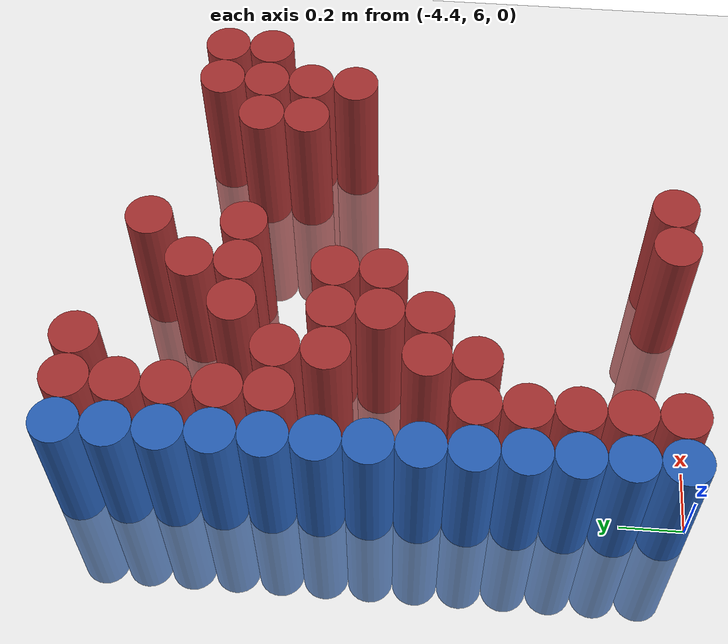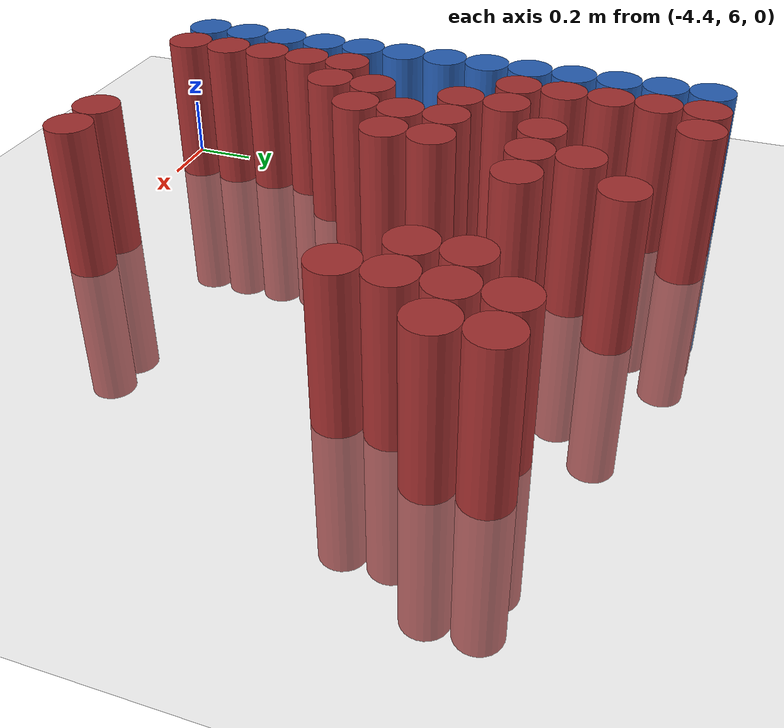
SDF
<sdf version="1.6">
 <world name="default">
  <model name="ground_plane">
   <static>1</static>
   <link name="link">
    <collision name="collision">
     <geometry><plane><normal>0 0 1</normal><size>100 100</size></plane></geometry>
     <surface><friction><ode><mu>100</mu><mu2>50</mu2></ode></friction></surface>
    </collision>
    <visual name="visual">
     <cast_shadows>0</cast_shadows>
     <geometry><plane><normal>0 0 1</normal><size>100 100</size></plane></geometry>
     <material>
      <script><uri>file://media/materials/scripts/gazebo.material</uri><name>Gazebo/Grey</name></script>
     </material>
    </visual>
   </link>
  </model>
  <model name="unit_cylinder_102">
   <static>1</static>
   <pose>-4.425000 6.075000 0.000000 0.000000 0.000000 0.000000</pose>
   <link name="link">
    <inertial>
     <mass>1</mass>
     <inertia><ixx>0.145833</ixx><ixy>0</ixy><ixz>0</ixz><iyy>0.145833</iyy><iyz>0</iyz><izz>0.125</izz></inertia>
    </inertial>
    <collision name="collision">
     <geometry><cylinder><radius>0.075000</radius><length>1</length></cylinder></geometry>
    </collision>
    <visual name="visual">
     <geometry><cylinder><radius>0.075000</radius><length>1</length></cylinder></geometry>
     <material>
      <ambient>0.152000 0.379000 0.720000 1</ambient>
      <diffuse>0.152000 0.379000 0.720000 1</diffuse>
     </material>
     <material>
      <script><name>Gazebo/Grey</name><uri>file://media/materials/scripts/gazebo.material</uri></script>
     </material>
    </visual>
   </link>
  </model>
  <model name="unit_cylinder_103">
   <static>1</static>
   <pose>-4.425000 6.225000 0.000000 0.000000 0.000000 0.000000</pose>
   <link name="link">
    <inertial>
     <mass>1</mass>
     <inertia><ixx>0.145833</ixx><ixy>0</ixy><ixz>0</ixz><iyy>0.145833</iyy><iyz>0</iyz><izz>0.125</izz></inertia>
    </inertial>
    <collision name="collision">
     <geometry><cylinder><radius>0.075000</radius><length>1</length></cylinder></geometry>
    </collision>
    <visual name="visual">
     <geometry><cylinder><radius>0.075000</radius><length>1</length></cylinder></geometry>
     <material>
      <ambient>0.152000 0.379000 0.720000 1</ambient>
      <diffuse>0.152000 0.379000 0.720000 1</diffuse>
     </material>
     <material>
      <script><name>Gazebo/Grey</name><uri>file://media/materials/scripts/gazebo.material</uri></script>
     </material>
    </visual>
   </link>
  </model>
  <model name="unit_cylinder_104">
   <static>1</static>
   <pose>-4.425000 6.375000 0.000000 0.000000 0.000000 0.000000</pose>
   <link name="link">
    <inertial>
     <mass>1</mass>
     <inertia><ixx>0.145833</ixx><ixy>0</ixy><ixz>0</ixz><iyy>0.145833</iyy><iyz>0</iyz><izz>0.125</izz></inertia>
    </inertial>
    <collision name="collision">
     <geometry><cylinder><radius>0.075000</radius><length>1</length></cylinder></geometry>
    </collision>
    <visual name="visual">
     <geometry><cylinder><radius>0.075000</radius><length>1</length></cylinder></geometry>
     <material>
      <ambient>0.152000 0.379000 0.720000 1</ambient>
      <diffuse>0.152000 0.379000 0.720000 1</diffuse>
     </material>
     <material>
      <script><name>Gazebo/Grey</name><uri>file://media/materials/scripts/gazebo.material</uri></script>
     </material>
    </visual>
   </link>
  </model>
  <model name="unit_cylinder_105">
   <static>1</static>
   <pose>-4.425000 6.525000 0.000000 0.000000 0.000000 0.000000</pose>
   <link name="link">
    <inertial>
     <mass>1</mass>
     <inertia><ixx>0.145833</ixx><ixy>0</ixy><ixz>0</ixz><iyy>0.145833</iyy><iyz>0</iyz><izz>0.125</izz></inertia>
    </inertial>
    <collision name="collision">
     <geometry><cylinder><radius>0.075000</radius><length>1</length></cylinder></geometry>
    </collision>
    <visual name="visual">
     <geometry><cylinder><radius>0.075000</radius><length>1</length></cylinder></geometry>
     <material>
      <ambient>0.152000 0.379000 0.720000 1</ambient>
      <diffuse>0.152000 0.379000 0.720000 1</diffuse>
     </material>
     <material>
      <script><name>Gazebo/Grey</name><uri>file://media/materials/scripts/gazebo.material</uri></script>
     </material>
    </visual>
   </link>
  </model>
  <model name="unit_cylinder_106">
   <static>1</static>
   <pose>-4.425000 6.675000 0.000000 0.000000 0.000000 0.000000</pose>
   <link name="link">
    <inertial>
     <mass>1</mass>
     <inertia><ixx>0.145833</ixx><ixy>0</ixy><ixz>0</ixz><iyy>0.145833</iyy><iyz>0</iyz><izz>0.125</izz></inertia>
    </inertial>
    <collision name="collision">
     <geometry><cylinder><radius>0.075000</radius><length>1</length></cylinder></geometry>
    </collision>
    <visual name="visual">
     <geometry><cylinder><radius>0.075000</radius><length>1</length></cylinder></geometry>
     <material>
      <ambient>0.152000 0.379000 0.720000 1</ambient>
      <diffuse>0.152000 0.379000 0.720000 1</diffuse>
     </material>
     <material>
      <script><name>Gazebo/Grey</name><uri>file://media/materials/scripts/gazebo.material</uri></script>
     </material>
    </visual>
   </link>
  </model>
  <model name="unit_cylinder_107">
   <static>1</static>
   <pose>-4.425000 6.825000 0.000000 0.000000 0.000000 0.000000</pose>
   <link name="link">
    <inertial>
     <mass>1</mass>
     <inertia><ixx>0.145833</ixx><ixy>0</ixy><ixz>0</ixz><iyy>0.145833</iyy><iyz>0</iyz><izz>0.125</izz></inertia>
    </inertial>
    <collision name="collision">
     <geometry><cylinder><radius>0.075000</radius><length>1</length></cylinder></geometry>
    </collision>
    <visual name="visual">
     <geometry><cylinder><radius>0.075000</radius><length>1</length></cylinder></geometry>
     <material>
      <ambient>0.152000 0.379000 0.720000 1</ambient>
      <diffuse>0.152000 0.379000 0.720000 1</diffuse>
     </material>
     <material>
      <script><name>Gazebo/Grey</name><uri>file://media/materials/scripts/gazebo.material</uri></script>
     </material>
    </visual>
   </link>
  </model>
  <model name="unit_cylinder_108">
   <static>1</static>
   <pose>-4.425000 6.975000 0.000000 0.000000 0.000000 0.000000</pose>
   <link name="link">
    <inertial>
     <mass>1</mass>
     <inertia><ixx>0.145833</ixx><ixy>0</ixy><ixz>0</ixz><iyy>0.145833</iyy><iyz>0</iyz><izz>0.125</izz></inertia>
    </inertial>
    <collision name="collision">
     <geometry><cylinder><radius>0.075000</radius><length>1</length></cylinder></geometry>
    </collision>
    <visual name="visual">
     <geometry><cylinder><radius>0.075000</radius><length>1</length></cylinder></geometry>
     <material>
      <ambient>0.152000 0.379000 0.720000 1</ambient>
      <diffuse>0.152000 0.379000 0.720000 1</diffuse>
     </material>
     <material>
      <script><name>Gazebo/Grey</name><uri>file://media/materials/scripts/gazebo.material</uri></script>
     </material>
    </visual>
   </link>
  </model>
  <model name="unit_cylinder_109">
   <static>1</static>
   <pose>-4.425000 7.125000 0.000000 0.000000 0.000000 0.000000</pose>
   <link name="link">
    <inertial>
     <mass>1</mass>
     <inertia><ixx>0.145833</ixx><ixy>0</ixy><ixz>0</ixz><iyy>0.145833</iyy><iyz>0</iyz><izz>0.125</izz></inertia>
    </inertial>
    <collision name="collision">
     <geometry><cylinder><radius>0.075000</radius><length>1</length></cylinder></geometry>
    </collision>
    <visual name="visual">
     <geometry><cylinder><radius>0.075000</radius><length>1</length></cylinder></geometry>
     <material>
      <ambient>0.152000 0.379000 0.720000 1</ambient>
      <diffuse>0.152000 0.379000 0.720000 1</diffuse>
     </material>
     <material>
      <script><name>Gazebo/Grey</name><uri>file://media/materials/scripts/gazebo.material</uri></script>
     </material>
    </visual>
   </link>
  </model>
  <model name="unit_cylinder_110">
   <static>1</static>
   <pose>-4.425000 7.275000 0.000000 0.000000 0.000000 0.000000</pose>
   <link name="link">
    <inertial>
     <mass>1</mass>
     <inertia><ixx>0.145833</ixx><ixy>0</ixy><ixz>0</ixz><iyy>0.145833</iyy><iyz>0</iyz><izz>0.125</izz></inertia>
    </inertial>
    <collision name="collision">
     <geometry><cylinder><radius>0.075000</radius><length>1</length></cylinder></geometry>
    </collision>
    <visual name="visual">
     <geometry><cylinder><radius>0.075000</radius><length>1</length></cylinder></geometry>
     <material>
      <ambient>0.152000 0.379000 0.720000 1</ambient>
      <diffuse>0.152000 0.379000 0.720000 1</diffuse>
     </material>
     <material>
      <script><name>Gazebo/Grey</name><uri>file://media/materials/scripts/gazebo.material</uri></script>
     </material>
    </visual>
   </link>
  </model>
  <model name="unit_cylinder_111">
   <static>1</static>
   <pose>-4.425000 7.425000 0.000000 0.000000 0.000000 0.000000</pose>
   <link name="link">
    <inertial>
     <mass>1</mass>
     <inertia><ixx>0.145833</ixx><ixy>0</ixy><ixz>0</ixz><iyy>0.145833</iyy><iyz>0</iyz><izz>0.125</izz></inertia>
    </inertial>
    <collision name="collision">
     <geometry><cylinder><radius>0.075000</radius><length>1</length></cylinder></geometry>
    </collision>
    <visual name="visual">
     <geometry><cylinder><radius>0.075000</radius><length>1</length></cylinder></geometry>
     <material>
      <ambient>0.152000 0.379000 0.720000 1</ambient>
      <diffuse>0.152000 0.379000 0.720000 1</diffuse>
     </material>
     <material>
      <script><name>Gazebo/Grey</name><uri>file://media/materials/scripts/gazebo.material</uri></script>
     </material>
    </visual>
   </link>
  </model>
  <model name="unit_cylinder_112">
   <static>1</static>
   <pose>-4.425000 7.575000 0.000000 0.000000 0.000000 0.000000</pose>
   <link name="link">
    <inertial>
     <mass>1</mass>
     <inertia><ixx>0.145833</ixx><ixy>0</ixy><ixz>0</ixz><iyy>0.145833</iyy><iyz>0</iyz><izz>0.125</izz></inertia>
    </inertial>
    <collision name="collision">
     <geometry><cylinder><radius>0.075000</radius><length>1</length></cylinder></geometry>
    </collision>
    <visual name="visual">
     <geometry><cylinder><radius>0.075000</radius><length>1</length></cylinder></geometry>
     <material>
      <ambient>0.152000 0.379000 0.720000 1</ambient>
      <diffuse>0.152000 0.379000 0.720000 1</diffuse>
     </material>
     <material>
      <script><name>Gazebo/Grey</name><uri>file://media/materials/scripts/gazebo.material</uri></script>
     </material>
    </visual>
   </link>
  </model>
  <model name="unit_cylinder_113">
   <static>1</static>
   <pose>-4.425000 7.725000 0.000000 0.000000 0.000000 0.000000</pose>
   <link name="link">
    <inertial>
     <mass>1</mass>
     <inertia><ixx>0.145833</ixx><ixy>0</ixy><ixz>0</ixz><iyy>0.145833</iyy><iyz>0</iyz><izz>0.125</izz></inertia>
    </inertial>
    <collision name="collision">
     <geometry><cylinder><radius>0.075000</radius><length>1</length></cylinder></geometry>
    </collision>
    <visual name="visual">
     <geometry><cylinder><radius>0.075000</radius><length>1</length></cylinder></geometry>
     <material>
      <ambient>0.152000 0.379000 0.720000 1</ambient>
      <diffuse>0.152000 0.379000 0.720000 1</diffuse>
     </material>
     <material>
      <script><name>Gazebo/Grey</name><uri>file://media/materials/scripts/gazebo.material</uri></script>
     </material>
    </visual>
   </link>
  </model>
  <model name="unit_cylinder_114">
   <static>1</static>
   <pose>-4.425000 7.875000 0.000000 0.000000 0.000000 0.000000</pose>
   <link name="link">
    <inertial>
     <mass>1</mass>
     <inertia><ixx>0.145833</ixx><ixy>0</ixy><ixz>0</ixz><iyy>0.145833</iyy><iyz>0</iyz><izz>0.125</izz></inertia>
    </inertial>
    <collision name="collision">
     <geometry><cylinder><radius>0.075000</radius><length>1</length></cylinder></geometry>
    </collision>
    <visual name="visual">
     <geometry><cylinder><radius>0.075000</radius><length>1</length></cylinder></geometry>
     <material>
      <ambient>0.152000 0.379000 0.720000 1</ambient>
      <diffuse>0.152000 0.379000 0.720000 1</diffuse>
     </material>
     <material>
      <script><name>Gazebo/Grey</name><uri>file://media/materials/scripts/gazebo.material</uri></script>
     </material>
    </visual>
   </link>
  </model>
  <model name="unit_cylinder_130">
   <static>1</static>
   <pose>-4.275000 6.075000 0.000000 0.000000 0.000000 0.000000</pose>
   <link name="link">
    <inertial>
     <mass>1</mass>
     <inertia><ixx>0.145833</ixx><ixy>0</ixy><ixz>0</ixz><iyy>0.145833</iyy><iyz>0</iyz><izz>0.125</izz></inertia>
    </inertial>
    <collision name="collision">
     <geometry><cylinder><radius>0.075000</radius><length>1</length></cylinder></geometry>
    </collision>
    <visual name="visual">
     <geometry><cylinder><radius>0.075000</radius><length>1</length></cylinder></geometry>
     <material>
      <ambient>0.648000 0.192000 0.192000 1</ambient>
      <diffuse>0.648000 0.192000 0.192000 1</diffuse>
     </material>
     <material>
      <script><name>Gazebo/Grey</name><uri>file://media/materials/scripts/gazebo.material</uri></script>
     </material>
    </visual>
   </link>
  </model>
  <model name="unit_cylinder_131">
   <static>1</static>
   <pose>-4.275000 6.225000 0.000000 0.000000 0.000000 0.000000</pose>
   <link name="link">
    <inertial>
     <mass>1</mass>
     <inertia><ixx>0.145833</ixx><ixy>0</ixy><ixz>0</ixz><iyy>0.145833</iyy><iyz>0</iyz><izz>0.125</izz></inertia>
    </inertial>
    <collision name="collision">
     <geometry><cylinder><radius>0.075000</radius><length>1</length></cylinder></geometry>
    </collision>
    <visual name="visual">
     <geometry><cylinder><radius>0.075000</radius><length>1</length></cylinder></geometry>
     <material>
      <ambient>0.648000 0.192000 0.192000 1</ambient>
      <diffuse>0.648000 0.192000 0.192000 1</diffuse>
     </material>
     <material>
      <script><name>Gazebo/Grey</name><uri>file://media/materials/scripts/gazebo.material</uri></script>
     </material>
    </visual>
   </link>
  </model>
  <model name="unit_cylinder_132">
   <static>1</static>
   <pose>-4.275000 6.375000 0.000000 0.000000 0.000000 0.000000</pose>
   <link name="link">
    <inertial>
     <mass>1</mass>
     <inertia><ixx>0.145833</ixx><ixy>0</ixy><ixz>0</ixz><iyy>0.145833</iyy><iyz>0</iyz><izz>0.125</izz></inertia>
    </inertial>
    <collision name="collision">
     <geometry><cylinder><radius>0.075000</radius><length>1</length></cylinder></geometry>
    </collision>
    <visual name="visual">
     <geometry><cylinder><radius>0.075000</radius><length>1</length></cylinder></geometry>
     <material>
      <ambient>0.648000 0.192000 0.192000 1</ambient>
      <diffuse>0.648000 0.192000 0.192000 1</diffuse>
     </material>
     <material>
      <script><name>Gazebo/Grey</name><uri>file://media/materials/scripts/gazebo.material</uri></script>
     </material>
    </visual>
   </link>
  </model>
  <model name="unit_cylinder_133">
   <static>1</static>
   <pose>-4.275000 6.525000 0.000000 0.000000 0.000000 0.000000</pose>
   <link name="link">
    <inertial>
     <mass>1</mass>
     <inertia><ixx>0.145833</ixx><ixy>0</ixy><ixz>0</ixz><iyy>0.145833</iyy><iyz>0</iyz><izz>0.125</izz></inertia>
    </inertial>
    <collision name="collision">
     <geometry><cylinder><radius>0.075000</radius><length>1</length></cylinder></geometry>
    </collision>
    <visual name="visual">
     <geometry><cylinder><radius>0.075000</radius><length>1</length></cylinder></geometry>
     <material>
      <ambient>0.648000 0.192000 0.192000 1</ambient>
      <diffuse>0.648000 0.192000 0.192000 1</diffuse>
     </material>
     <material>
      <script><name>Gazebo/Grey</name><uri>file://media/materials/scripts/gazebo.material</uri></script>
     </material>
    </visual>
   </link>
  </model>
  <model name="unit_cylinder_134">
   <static>1</static>
   <pose>-4.275000 6.675000 0.000000 0.000000 0.000000 0.000000</pose>
   <link name="link">
    <inertial>
     <mass>1</mass>
     <inertia><ixx>0.145833</ixx><ixy>0</ixy><ixz>0</ixz><iyy>0.145833</iyy><iyz>0</iyz><izz>0.125</izz></inertia>
    </inertial>
    <collision name="collision">
     <geometry><cylinder><radius>0.075000</radius><length>1</length></cylinder></geometry>
    </collision>
    <visual name="visual">
     <geometry><cylinder><radius>0.075000</radius><length>1</length></cylinder></geometry>
     <material>
      <ambient>0.648000 0.192000 0.192000 1</ambient>
      <diffuse>0.648000 0.192000 0.192000 1</diffuse>
     </material>
     <material>
      <script><name>Gazebo/Grey</name><uri>file://media/materials/scripts/gazebo.material</uri></script>
     </material>
    </visual>
   </link>
  </model>
  <model name="unit_cylinder_135">
   <static>1</static>
   <pose>-4.275000 7.275000 0.000000 0.000000 0.000000 0.000000</pose>
   <link name="link">
    <inertial>
     <mass>1</mass>
     <inertia><ixx>0.145833</ixx><ixy>0</ixy><ixz>0</ixz><iyy>0.145833</iyy><iyz>0</iyz><izz>0.125</izz></inertia>
    </inertial>
    <collision name="collision">
     <geometry><cylinder><radius>0.075000</radius><length>1</length></cylinder></geometry>
    </collision>
    <visual name="visual">
     <geometry><cylinder><radius>0.075000</radius><length>1</length></cylinder></geometry>
     <material>
      <ambient>0.648000 0.192000 0.192000 1</ambient>
      <diffuse>0.648000 0.192000 0.192000 1</diffuse>
     </material>
     <material>
      <script><name>Gazebo/Grey</name><uri>file://media/materials/scripts/gazebo.material</uri></script>
     </material>
    </visual>
   </link>
  </model>
  <model name="unit_cylinder_136">
   <static>1</static>
   <pose>-4.275000 7.425000 0.000000 0.000000 0.000000 0.000000</pose>
   <link name="link">
    <inertial>
     <mass>1</mass>
     <inertia><ixx>0.145833</ixx><ixy>0</ixy><ixz>0</ixz><iyy>0.145833</iyy><iyz>0</iyz><izz>0.125</izz></inertia>
    </inertial>
    <collision name="collision">
     <geometry><cylinder><radius>0.075000</radius><length>1</length></cylinder></geometry>
    </collision>
    <visual name="visual">
     <geometry><cylinder><radius>0.075000</radius><length>1</length></cylinder></geometry>
     <material>
      <ambient>0.648000 0.192000 0.192000 1</ambient>
      <diffuse>0.648000 0.192000 0.192000 1</diffuse>
     </material>
     <material>
      <script><name>Gazebo/Grey</name><uri>file://media/materials/scripts/gazebo.material</uri></script>
     </material>
    </visual>
   </link>
  </model>
  <model name="unit_cylinder_137">
   <static>1</static>
   <pose>-4.275000 7.575000 0.000000 0.000000 0.000000 0.000000</pose>
   <link name="link">
    <inertial>
     <mass>1</mass>
     <inertia><ixx>0.145833</ixx><ixy>0</ixy><ixz>0</ixz><iyy>0.145833</iyy><iyz>0</iyz><izz>0.125</izz></inertia>
    </inertial>
    <collision name="collision">
     <geometry><cylinder><radius>0.075000</radius><length>1</length></cylinder></geometry>
    </collision>
    <visual name="visual">
     <geometry><cylinder><radius>0.075000</radius><length>1</length></cylinder></geometry>
     <material>
      <ambient>0.648000 0.192000 0.192000 1</ambient>
      <diffuse>0.648000 0.192000 0.192000 1</diffuse>
     </material>
     <material>
      <script><name>Gazebo/Grey</name><uri>file://media/materials/scripts/gazebo.material</uri></script>
     </material>
    </visual>
   </link>
  </model>
  <model name="unit_cylinder_138">
   <static>1</static>
   <pose>-4.275000 7.725000 0.000000 0.000000 0.000000 0.000000</pose>
   <link name="link">
    <inertial>
     <mass>1</mass>
     <inertia><ixx>0.145833</ixx><ixy>0</ixy><ixz>0</ixz><iyy>0.145833</iyy><iyz>0</iyz><izz>0.125</izz></inertia>
    </inertial>
    <collision name="collision">
     <geometry><cylinder><radius>0.075000</radius><length>1</length></cylinder></geometry>
    </collision>
    <visual name="visual">
     <geometry><cylinder><radius>0.075000</radius><length>1</length></cylinder></geometry>
     <material>
      <ambient>0.648000 0.192000 0.192000 1</ambient>
      <diffuse>0.648000 0.192000 0.192000 1</diffuse>
     </material>
     <material>
      <script><name>Gazebo/Grey</name><uri>file://media/materials/scripts/gazebo.material</uri></script>
     </material>
    </visual>
   </link>
  </model>
  <model name="unit_cylinder_139">
   <static>1</static>
   <pose>-4.275000 7.875000 0.000000 0.000000 0.000000 0.000000</pose>
   <link name="link">
    <inertial>
     <mass>1</mass>
     <inertia><ixx>0.145833</ixx><ixy>0</ixy><ixz>0</ixz><iyy>0.145833</iyy><iyz>0</iyz><izz>0.125</izz></inertia>
    </inertial>
    <collision name="collision">
     <geometry><cylinder><radius>0.075000</radius><length>1</length></cylinder></geometry>
    </collision>
    <visual name="visual">
     <geometry><cylinder><radius>0.075000</radius><length>1</length></cylinder></geometry>
     <material>
      <ambient>0.648000 0.192000 0.192000 1</ambient>
      <diffuse>0.648000 0.192000 0.192000 1</diffuse>
     </material>
     <material>
      <script><name>Gazebo/Grey</name><uri>file://media/materials/scripts/gazebo.material</uri></script>
     </material>
    </visual>
   </link>
  </model>
  <model name="unit_cylinder_147">
   <static>1</static>
   <pose>-4.125000 6.675000 0.000000 0.000000 0.000000 0.000000</pose>
   <link name="link">
    <inertial>
     <mass>1</mass>
     <inertia><ixx>0.145833</ixx><ixy>0</ixy><ixz>0</ixz><iyy>0.145833</iyy><iyz>0</iyz><izz>0.125</izz></inertia>
    </inertial>
    <collision name="collision">
     <geometry><cylinder><radius>0.075000</radius><length>1</length></cylinder></geometry>
    </collision>
    <visual name="visual">
     <geometry><cylinder><radius>0.075000</radius><length>1</length></cylinder></geometry>
     <material>
      <ambient>0.648000 0.192000 0.192000 1</ambient>
      <diffuse>0.648000 0.192000 0.192000 1</diffuse>
     </material>
     <material>
      <script><name>Gazebo/Grey</name><uri>file://media/materials/scripts/gazebo.material</uri></script>
     </material>
    </visual>
   </link>
  </model>
  <model name="unit_cylinder_148">
   <static>1</static>
   <pose>-4.125000 6.825000 0.000000 0.000000 0.000000 0.000000</pose>
   <link name="link">
    <inertial>
     <mass>1</mass>
     <inertia><ixx>0.145833</ixx><ixy>0</ixy><ixz>0</ixz><iyy>0.145833</iyy><iyz>0</iyz><izz>0.125</izz></inertia>
    </inertial>
    <collision name="collision">
     <geometry><cylinder><radius>0.075000</radius><length>1</length></cylinder></geometry>
    </collision>
    <visual name="visual">
     <geometry><cylinder><radius>0.075000</radius><length>1</length></cylinder></geometry>
     <material>
      <ambient>0.648000 0.192000 0.192000 1</ambient>
      <diffuse>0.648000 0.192000 0.192000 1</diffuse>
     </material>
     <material>
      <script><name>Gazebo/Grey</name><uri>file://media/materials/scripts/gazebo.material</uri></script>
     </material>
    </visual>
   </link>
  </model>
  <model name="unit_cylinder_149">
   <static>1</static>
   <pose>-4.125000 7.125000 0.000000 0.000000 0.000000 0.000000</pose>
   <link name="link">
    <inertial>
     <mass>1</mass>
     <inertia><ixx>0.145833</ixx><ixy>0</ixy><ixz>0</ixz><iyy>0.145833</iyy><iyz>0</iyz><izz>0.125</izz></inertia>
    </inertial>
    <collision name="collision">
     <geometry><cylinder><radius>0.075000</radius><length>1</length></cylinder></geometry>
    </collision>
    <visual name="visual">
     <geometry><cylinder><radius>0.075000</radius><length>1</length></cylinder></geometry>
     <material>
      <ambient>0.648000 0.192000 0.192000 1</ambient>
      <diffuse>0.648000 0.192000 0.192000 1</diffuse>
     </material>
     <material>
      <script><name>Gazebo/Grey</name><uri>file://media/materials/scripts/gazebo.material</uri></script>
     </material>
    </visual>
   </link>
  </model>
  <model name="unit_cylinder_150">
   <static>1</static>
   <pose>-4.125000 7.275000 0.000000 0.000000 0.000000 0.000000</pose>
   <link name="link">
    <inertial>
     <mass>1</mass>
     <inertia><ixx>0.145833</ixx><ixy>0</ixy><ixz>0</ixz><iyy>0.145833</iyy><iyz>0</iyz><izz>0.125</izz></inertia>
    </inertial>
    <collision name="collision">
     <geometry><cylinder><radius>0.075000</radius><length>1</length></cylinder></geometry>
    </collision>
    <visual name="visual">
     <geometry><cylinder><radius>0.075000</radius><length>1</length></cylinder></geometry>
     <material>
      <ambient>0.648000 0.192000 0.192000 1</ambient>
      <diffuse>0.648000 0.192000 0.192000 1</diffuse>
     </material>
     <material>
      <script><name>Gazebo/Grey</name><uri>file://media/materials/scripts/gazebo.material</uri></script>
     </material>
    </visual>
   </link>
  </model>
  <model name="unit_cylinder_151">
   <static>1</static>
   <pose>-4.125000 7.875000 0.000000 0.000000 0.000000 0.000000</pose>
   <link name="link">
    <inertial>
     <mass>1</mass>
     <inertia><ixx>0.145833</ixx><ixy>0</ixy><ixz>0</ixz><iyy>0.145833</iyy><iyz>0</iyz><izz>0.125</izz></inertia>
    </inertial>
    <collision name="collision">
     <geometry><cylinder><radius>0.075000</radius><length>1</length></cylinder></geometry>
    </collision>
    <visual name="visual">
     <geometry><cylinder><radius>0.075000</radius><length>1</length></cylinder></geometry>
     <material>
      <ambient>0.648000 0.192000 0.192000 1</ambient>
      <diffuse>0.648000 0.192000 0.192000 1</diffuse>
     </material>
     <material>
      <script><name>Gazebo/Grey</name><uri>file://media/materials/scripts/gazebo.material</uri></script>
     </material>
    </visual>
   </link>
  </model>
  <model name="unit_cylinder_154">
   <static>1</static>
   <pose>-3.975000 6.825000 0.000000 0.000000 0.000000 0.000000</pose>
   <link name="link">
    <inertial>
     <mass>1</mass>
     <inertia><ixx>0.145833</ixx><ixy>0</ixy><ixz>0</ixz><iyy>0.145833</iyy><iyz>0</iyz><izz>0.125</izz></inertia>
    </inertial>
    <collision name="collision">
     <geometry><cylinder><radius>0.075000</radius><length>1</length></cylinder></geometry>
    </collision>
    <visual name="visual">
     <geometry><cylinder><radius>0.075000</radius><length>1</length></cylinder></geometry>
     <material>
      <ambient>0.648000 0.192000 0.192000 1</ambient>
      <diffuse>0.648000 0.192000 0.192000 1</diffuse>
     </material>
     <material>
      <script><name>Gazebo/Grey</name><uri>file://media/materials/scripts/gazebo.material</uri></script>
     </material>
    </visual>
   </link>
  </model>
  <model name="unit_cylinder_155">
   <static>1</static>
   <pose>-3.975000 6.975000 0.000000 0.000000 0.000000 0.000000</pose>
   <link name="link">
    <inertial>
     <mass>1</mass>
     <inertia><ixx>0.145833</ixx><ixy>0</ixy><ixz>0</ixz><iyy>0.145833</iyy><iyz>0</iyz><izz>0.125</izz></inertia>
    </inertial>
    <collision name="collision">
     <geometry><cylinder><radius>0.075000</radius><length>1</length></cylinder></geometry>
    </collision>
    <visual name="visual">
     <geometry><cylinder><radius>0.075000</radius><length>1</length></cylinder></geometry>
     <material>
      <ambient>0.648000 0.192000 0.192000 1</ambient>
      <diffuse>0.648000 0.192000 0.192000 1</diffuse>
     </material>
     <material>
      <script><name>Gazebo/Grey</name><uri>file://media/materials/scripts/gazebo.material</uri></script>
     </material>
    </visual>
   </link>
  </model>
  <model name="unit_cylinder_156">
   <static>1</static>
   <pose>-3.975000 7.125000 0.000000 0.000000 0.000000 0.000000</pose>
   <link name="link">
    <inertial>
     <mass>1</mass>
     <inertia><ixx>0.145833</ixx><ixy>0</ixy><ixz>0</ixz><iyy>0.145833</iyy><iyz>0</iyz><izz>0.125</izz></inertia>
    </inertial>
    <collision name="collision">
     <geometry><cylinder><radius>0.075000</radius><length>1</length></cylinder></geometry>
    </collision>
    <visual name="visual">
     <geometry><cylinder><radius>0.075000</radius><length>1</length></cylinder></geometry>
     <material>
      <ambient>0.648000 0.192000 0.192000 1</ambient>
      <diffuse>0.648000 0.192000 0.192000 1</diffuse>
     </material>
     <material>
      <script><name>Gazebo/Grey</name><uri>file://media/materials/scripts/gazebo.material</uri></script>
     </material>
    </visual>
   </link>
  </model>
  <model name="unit_cylinder_157">
   <static>1</static>
   <pose>-3.975000 7.425000 0.000000 0.000000 0.000000 0.000000</pose>
   <link name="link">
    <inertial>
     <mass>1</mass>
     <inertia><ixx>0.145833</ixx><ixy>0</ixy><ixz>0</ixz><iyy>0.145833</iyy><iyz>0</iyz><izz>0.125</izz></inertia>
    </inertial>
    <collision name="collision">
     <geometry><cylinder><radius>0.075000</radius><length>1</length></cylinder></geometry>
    </collision>
    <visual name="visual">
     <geometry><cylinder><radius>0.075000</radius><length>1</length></cylinder></geometry>
     <material>
      <ambient>0.648000 0.192000 0.192000 1</ambient>
      <diffuse>0.648000 0.192000 0.192000 1</diffuse>
     </material>
     <material>
      <script><name>Gazebo/Grey</name><uri>file://media/materials/scripts/gazebo.material</uri></script>
     </material>
    </visual>
   </link>
  </model>
  <model name="unit_cylinder_159">
   <static>1</static>
   <pose>-3.825000 6.975000 0.000000 0.000000 0.000000 0.000000</pose>
   <link name="link">
    <inertial>
     <mass>1</mass>
     <inertia><ixx>0.145833</ixx><ixy>0</ixy><ixz>0</ixz><iyy>0.145833</iyy><iyz>0</iyz><izz>0.125</izz></inertia>
    </inertial>
    <collision name="collision">
     <geometry><cylinder><radius>0.075000</radius><length>1</length></cylinder></geometry>
    </collision>
    <visual name="visual">
     <geometry><cylinder><radius>0.075000</radius><length>1</length></cylinder></geometry>
     <material>
      <ambient>0.648000 0.192000 0.192000 1</ambient>
      <diffuse>0.648000 0.192000 0.192000 1</diffuse>
     </material>
     <material>
      <script><name>Gazebo/Grey</name><uri>file://media/materials/scripts/gazebo.material</uri></script>
     </material>
    </visual>
   </link>
  </model>
  <model name="unit_cylinder_160">
   <static>1</static>
   <pose>-3.825000 7.125000 0.000000 0.000000 0.000000 0.000000</pose>
   <link name="link">
    <inertial>
     <mass>1</mass>
     <inertia><ixx>0.145833</ixx><ixy>0</ixy><ixz>0</ixz><iyy>0.145833</iyy><iyz>0</iyz><izz>0.125</izz></inertia>
    </inertial>
    <collision name="collision">
     <geometry><cylinder><radius>0.075000</radius><length>1</length></cylinder></geometry>
    </collision>
    <visual name="visual">
     <geometry><cylinder><radius>0.075000</radius><length>1</length></cylinder></geometry>
     <material>
      <ambient>0.648000 0.192000 0.192000 1</ambient>
      <diffuse>0.648000 0.192000 0.192000 1</diffuse>
     </material>
     <material>
      <script><name>Gazebo/Grey</name><uri>file://media/materials/scripts/gazebo.material</uri></script>
     </material>
    </visual>
   </link>
  </model>
  <model name="unit_cylinder_161">
   <static>1</static>
   <pose>-3.825000 7.425000 0.000000 0.000000 0.000000 0.000000</pose>
   <link name="link">
    <inertial>
     <mass>1</mass>
     <inertia><ixx>0.145833</ixx><ixy>0</ixy><ixz>0</ixz><iyy>0.145833</iyy><iyz>0</iyz><izz>0.125</izz></inertia>
    </inertial>
    <collision name="collision">
     <geometry><cylinder><radius>0.075000</radius><length>1</length></cylinder></geometry>
    </collision>
    <visual name="visual">
     <geometry><cylinder><radius>0.075000</radius><length>1</length></cylinder></geometry>
     <material>
      <ambient>0.648000 0.192000 0.192000 1</ambient>
      <diffuse>0.648000 0.192000 0.192000 1</diffuse>
     </material>
     <material>
      <script><name>Gazebo/Grey</name><uri>file://media/materials/scripts/gazebo.material</uri></script>
     </material>
    </visual>
   </link>
  </model>
  <model name="unit_cylinder_162">
   <static>1</static>
   <pose>-3.825000 7.575000 0.000000 0.000000 0.000000 0.000000</pose>
   <link name="link">
    <inertial>
     <mass>1</mass>
     <inertia><ixx>0.145833</ixx><ixy>0</ixy><ixz>0</ixz><iyy>0.145833</iyy><iyz>0</iyz><izz>0.125</izz></inertia>
    </inertial>
    <collision name="collision">
     <geometry><cylinder><radius>0.075000</radius><length>1</length></cylinder></geometry>
    </collision>
    <visual name="visual">
     <geometry><cylinder><radius>0.075000</radius><length>1</length></cylinder></geometry>
     <material>
      <ambient>0.648000 0.192000 0.192000 1</ambient>
      <diffuse>0.648000 0.192000 0.192000 1</diffuse>
     </material>
     <material>
      <script><name>Gazebo/Grey</name><uri>file://media/materials/scripts/gazebo.material</uri></script>
     </material>
    </visual>
   </link>
  </model>
  <model name="unit_cylinder_168">
   <static>1</static>
   <pose>-3.675000 6.075000 0.000000 0.000000 0.000000 0.000000</pose>
   <link name="link">
    <inertial>
     <mass>1</mass>
     <inertia><ixx>0.145833</ixx><ixy>0</ixy><ixz>0</ixz><iyy>0.145833</iyy><iyz>0</iyz><izz>0.125</izz></inertia>
    </inertial>
    <collision name="collision">
     <geometry><cylinder><radius>0.075000</radius><length>1</length></cylinder></geometry>
    </collision>
    <visual name="visual">
     <geometry><cylinder><radius>0.075000</radius><length>1</length></cylinder></geometry>
     <material>
      <ambient>0.648000 0.192000 0.192000 1</ambient>
      <diffuse>0.648000 0.192000 0.192000 1</diffuse>
     </material>
     <material>
      <script><name>Gazebo/Grey</name><uri>file://media/materials/scripts/gazebo.material</uri></script>
     </material>
    </visual>
   </link>
  </model>
  <model name="unit_cylinder_169">
   <static>1</static>
   <pose>-3.675000 7.425000 0.000000 0.000000 0.000000 0.000000</pose>
   <link name="link">
    <inertial>
     <mass>1</mass>
     <inertia><ixx>0.145833</ixx><ixy>0</ixy><ixz>0</ixz><iyy>0.145833</iyy><iyz>0</iyz><izz>0.125</izz></inertia>
    </inertial>
    <collision name="collision">
     <geometry><cylinder><radius>0.075000</radius><length>1</length></cylinder></geometry>
    </collision>
    <visual name="visual">
     <geometry><cylinder><radius>0.075000</radius><length>1</length></cylinder></geometry>
     <material>
      <ambient>0.648000 0.192000 0.192000 1</ambient>
      <diffuse>0.648000 0.192000 0.192000 1</diffuse>
     </material>
     <material>
      <script><name>Gazebo/Grey</name><uri>file://media/materials/scripts/gazebo.material</uri></script>
     </material>
    </visual>
   </link>
  </model>
  <model name="unit_cylinder_170">
   <static>1</static>
   <pose>-3.675000 7.725000 0.000000 0.000000 0.000000 0.000000</pose>
   <link name="link">
    <inertial>
     <mass>1</mass>
     <inertia><ixx>0.145833</ixx><ixy>0</ixy><ixz>0</ixz><iyy>0.145833</iyy><iyz>0</iyz><izz>0.125</izz></inertia>
    </inertial>
    <collision name="collision">
     <geometry><cylinder><radius>0.075000</radius><length>1</length></cylinder></geometry>
    </collision>
    <visual name="visual">
     <geometry><cylinder><radius>0.075000</radius><length>1</length></cylinder></geometry>
     <material>
      <ambient>0.648000 0.192000 0.192000 1</ambient>
      <diffuse>0.648000 0.192000 0.192000 1</diffuse>
     </material>
     <material>
      <script><name>Gazebo/Grey</name><uri>file://media/materials/scripts/gazebo.material</uri></script>
     </material>
    </visual>
   </link>
  </model>
  <model name="unit_cylinder_176">
   <static>1</static>
   <pose>-3.525000 6.075000 0.000000 0.000000 0.000000 0.000000</pose>
   <link name="link">
    <inertial>
     <mass>1</mass>
     <inertia><ixx>0.145833</ixx><ixy>0</ixy><ixz>0</ixz><iyy>0.145833</iyy><iyz>0</iyz><izz>0.125</izz></inertia>
    </inertial>
    <collision name="collision">
     <geometry><cylinder><radius>0.075000</radius><length>1</length></cylinder></geometry>
    </collision>
    <visual name="visual">
     <geometry><cylinder><radius>0.075000</radius><length>1</length></cylinder></geometry>
     <material>
      <ambient>0.648000 0.192000 0.192000 1</ambient>
      <diffuse>0.648000 0.192000 0.192000 1</diffuse>
     </material>
     <material>
      <script><name>Gazebo/Grey</name><uri>file://media/materials/scripts/gazebo.material</uri></script>
     </material>
    </visual>
   </link>
  </model>
  <model name="unit_cylinder_187">
   <static>1</static>
   <pose>-3.225000 7.275000 0.000000 0.000000 0.000000 0.000000</pose>
   <link name="link">
    <inertial>
     <mass>1</mass>
     <inertia><ixx>0.145833</ixx><ixy>0</ixy><ixz>0</ixz><iyy>0.145833</iyy><iyz>0</iyz><izz>0.125</izz></inertia>
    </inertial>
    <collision name="collision">
     <geometry><cylinder><radius>0.075000</radius><length>1</length></cylinder></geometry>
    </collision>
    <visual name="visual">
     <geometry><cylinder><radius>0.075000</radius><length>1</length></cylinder></geometry>
     <material>
      <ambient>0.648000 0.192000 0.192000 1</ambient>
      <diffuse>0.648000 0.192000 0.192000 1</diffuse>
     </material>
     <material>
      <script><name>Gazebo/Grey</name><uri>file://media/materials/scripts/gazebo.material</uri></script>
     </material>
    </visual>
   </link>
  </model>
  <model name="unit_cylinder_188">
   <static>1</static>
   <pose>-3.225000 7.425000 0.000000 0.000000 0.000000 0.000000</pose>
   <link name="link">
    <inertial>
     <mass>1</mass>
     <inertia><ixx>0.145833</ixx><ixy>0</ixy><ixz>0</ixz><iyy>0.145833</iyy><iyz>0</iyz><izz>0.125</izz></inertia>
    </inertial>
    <collision name="collision">
     <geometry><cylinder><radius>0.075000</radius><length>1</length></cylinder></geometry>
    </collision>
    <visual name="visual">
     <geometry><cylinder><radius>0.075000</radius><length>1</length></cylinder></geometry>
     <material>
      <ambient>0.648000 0.192000 0.192000 1</ambient>
      <diffuse>0.648000 0.192000 0.192000 1</diffuse>
     </material>
     <material>
      <script><name>Gazebo/Grey</name><uri>file://media/materials/scripts/gazebo.material</uri></script>
     </material>
    </visual>
   </link>
  </model>
  <model name="unit_cylinder_194">
   <static>1</static>
   <pose>-3.075000 7.125000 0.000000 0.000000 0.000000 0.000000</pose>
   <link name="link">
    <inertial>
     <mass>1</mass>
     <inertia><ixx>0.145833</ixx><ixy>0</ixy><ixz>0</ixz><iyy>0.145833</iyy><iyz>0</iyz><izz>0.125</izz></inertia>
    </inertial>
    <collision name="collision">
     <geometry><cylinder><radius>0.075000</radius><length>1</length></cylinder></geometry>
    </collision>
    <visual name="visual">
     <geometry><cylinder><radius>0.075000</radius><length>1</length></cylinder></geometry>
     <material>
      <ambient>0.648000 0.192000 0.192000 1</ambient>
      <diffuse>0.648000 0.192000 0.192000 1</diffuse>
     </material>
     <material>
      <script><name>Gazebo/Grey</name><uri>file://media/materials/scripts/gazebo.material</uri></script>
     </material>
    </visual>
   </link>
  </model>
  <model name="unit_cylinder_195">
   <static>1</static>
   <pose>-3.075000 7.275000 0.000000 0.000000 0.000000 0.000000</pose>
   <link name="link">
    <inertial>
     <mass>1</mass>
     <inertia><ixx>0.145833</ixx><ixy>0</ixy><ixz>0</ixz><iyy>0.145833</iyy><iyz>0</iyz><izz>0.125</izz></inertia>
    </inertial>
    <collision name="collision">
     <geometry><cylinder><radius>0.075000</radius><length>1</length></cylinder></geometry>
    </collision>
    <visual name="visual">
     <geometry><cylinder><radius>0.075000</radius><length>1</length></cylinder></geometry>
     <material>
      <ambient>0.648000 0.192000 0.192000 1</ambient>
      <diffuse>0.648000 0.192000 0.192000 1</diffuse>
     </material>
     <material>
      <script><name>Gazebo/Grey</name><uri>file://media/materials/scripts/gazebo.material</uri></script>
     </material>
    </visual>
   </link>
  </model>
  <model name="unit_cylinder_196">
   <static>1</static>
   <pose>-3.075000 7.425000 0.000000 0.000000 0.000000 0.000000</pose>
   <link name="link">
    <inertial>
     <mass>1</mass>
     <inertia><ixx>0.145833</ixx><ixy>0</ixy><ixz>0</ixz><iyy>0.145833</iyy><iyz>0</iyz><izz>0.125</izz></inertia>
    </inertial>
    <collision name="collision">
     <geometry><cylinder><radius>0.075000</radius><length>1</length></cylinder></geometry>
    </collision>
    <visual name="visual">
     <geometry><cylinder><radius>0.075000</radius><length>1</length></cylinder></geometry>
     <material>
      <ambient>0.648000 0.192000 0.192000 1</ambient>
      <diffuse>0.648000 0.192000 0.192000 1</diffuse>
     </material>
     <material>
      <script><name>Gazebo/Grey</name><uri>file://media/materials/scripts/gazebo.material</uri></script>
     </material>
    </visual>
   </link>
  </model>
  <model name="unit_cylinder_197">
   <static>1</static>
   <pose>-3.075000 7.575000 0.000000 0.000000 0.000000 0.000000</pose>
   <link name="link">
    <inertial>
     <mass>1</mass>
     <inertia><ixx>0.145833</ixx><ixy>0</ixy><ixz>0</ixz><iyy>0.145833</iyy><iyz>0</iyz><izz>0.125</izz></inertia>
    </inertial>
    <collision name="collision">
     <geometry><cylinder><radius>0.075000</radius><length>1</length></cylinder></geometry>
    </collision>
    <visual name="visual">
     <geometry><cylinder><radius>0.075000</radius><length>1</length></cylinder></geometry>
     <material>
      <ambient>0.648000 0.192000 0.192000 1</ambient>
      <diffuse>0.648000 0.192000 0.192000 1</diffuse>
     </material>
     <material>
      <script><name>Gazebo/Grey</name><uri>file://media/materials/scripts/gazebo.material</uri></script>
     </material>
    </visual>
   </link>
  </model>
  <model name="unit_cylinder_202">
   <static>1</static>
   <pose>-2.925000 7.425000 0.000000 0.000000 0.000000 0.000000</pose>
   <link name="link">
    <inertial>
     <mass>1</mass>
     <inertia><ixx>0.145833</ixx><ixy>0</ixy><ixz>0</ixz><iyy>0.145833</iyy><iyz>0</iyz><izz>0.125</izz></inertia>
    </inertial>
    <collision name="collision">
     <geometry><cylinder><radius>0.075000</radius><length>1</length></cylinder></geometry>
    </collision>
    <visual name="visual">
     <geometry><cylinder><radius>0.075000</radius><length>1</length></cylinder></geometry>
     <material>
      <ambient>0.648000 0.192000 0.192000 1</ambient>
      <diffuse>0.648000 0.192000 0.192000 1</diffuse>
     </material>
     <material>
      <script><name>Gazebo/Grey</name><uri>file://media/materials/scripts/gazebo.material</uri></script>
     </material>
    </visual>
   </link>
  </model>
  <model name="unit_cylinder_203">
   <static>1</static>
   <pose>-2.925000 7.575000 0.000000 0.000000 0.000000 0.000000</pose>
   <link name="link">
    <inertial>
     <mass>1</mass>
     <inertia><ixx>0.145833</ixx><ixy>0</ixy><ixz>0</ixz><iyy>0.145833</iyy><iyz>0</iyz><izz>0.125</izz></inertia>
    </inertial>
    <collision name="collision">
     <geometry><cylinder><radius>0.075000</radius><length>1</length></cylinder></geometry>
    </collision>
    <visual name="visual">
     <geometry><cylinder><radius>0.075000</radius><length>1</length></cylinder></geometry>
     <material>
      <ambient>0.648000 0.192000 0.192000 1</ambient>
      <diffuse>0.648000 0.192000 0.192000 1</diffuse>
     </material>
     <material>
      <script><name>Gazebo/Grey</name><uri>file://media/materials/scripts/gazebo.material</uri></script>
     </material>
    </visual>
   </link>
  </model>
 </world>
</sdf>
